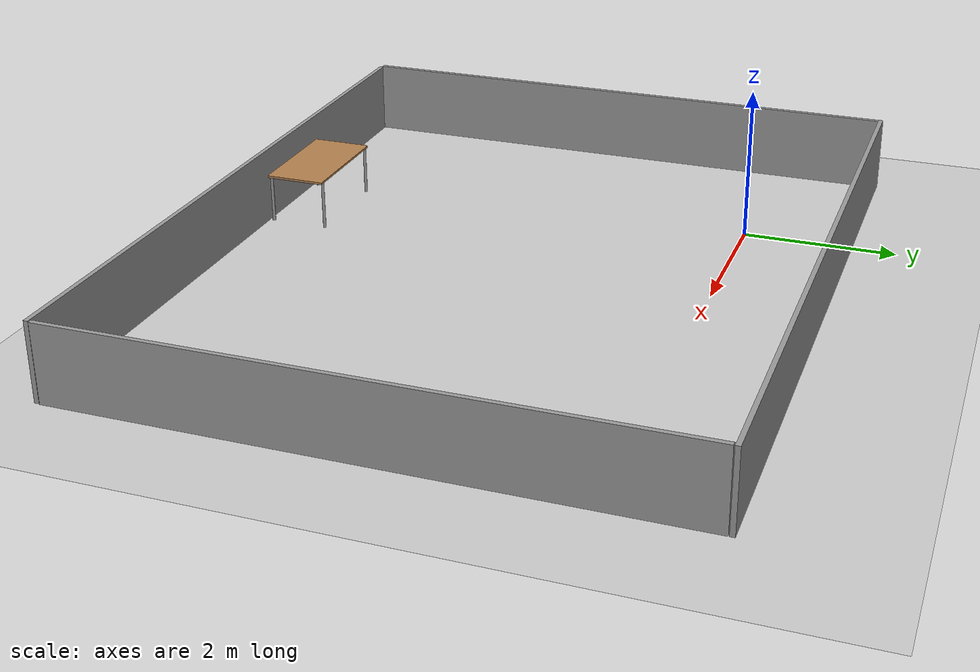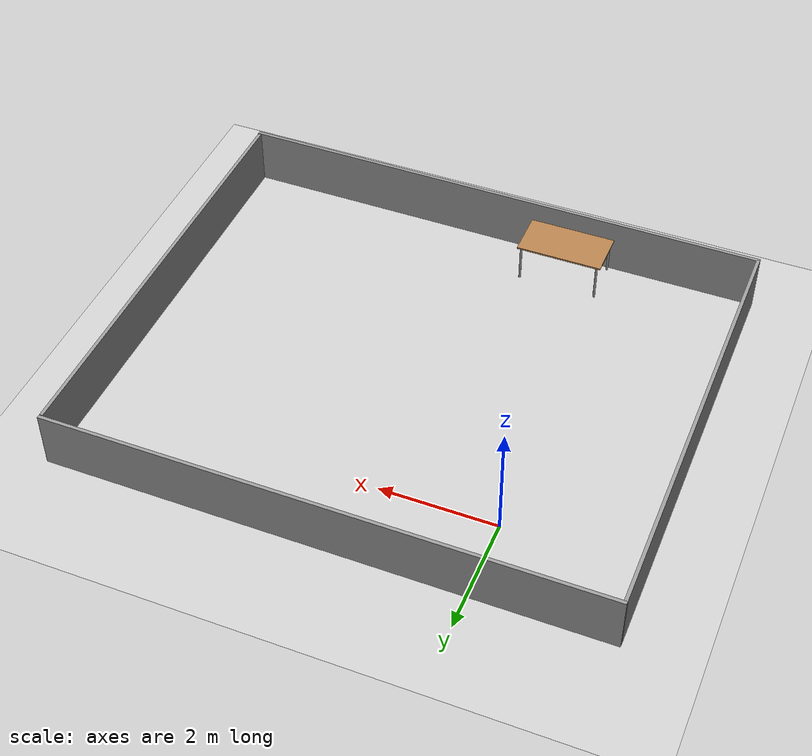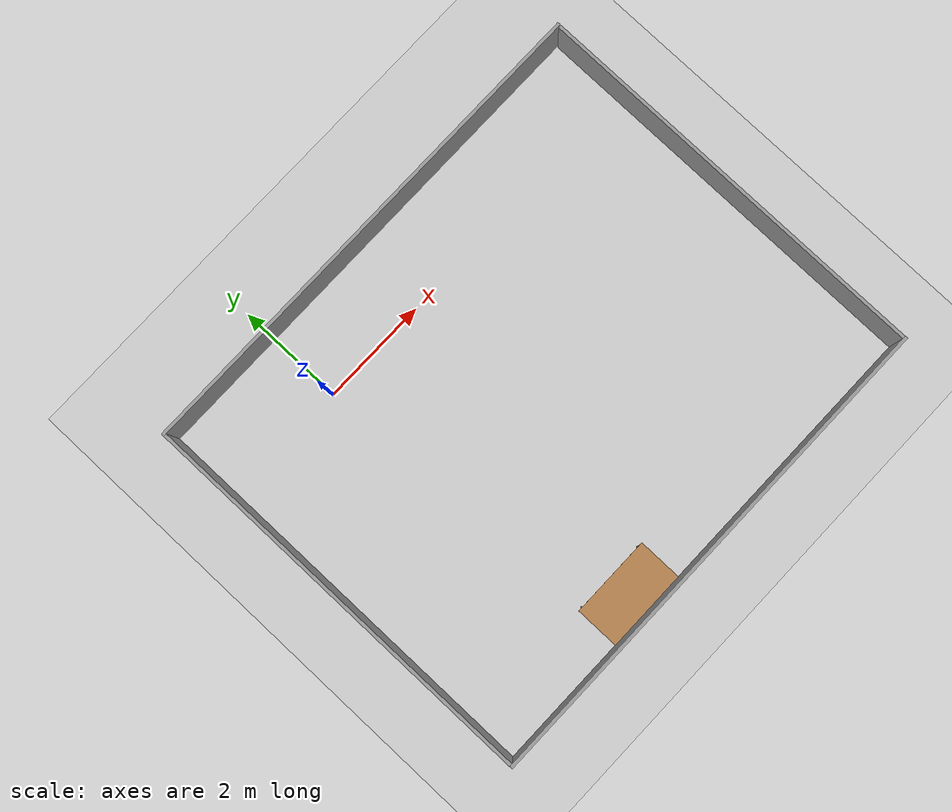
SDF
<sdf version="1.7">
 <world name="default">
  <model name="ground_plane">
   <static>1</static>
   <link name="link">
    <collision name="collision">
     <geometry><plane><normal>0 0 1</normal><size>100 100</size></plane></geometry>
     <surface>
      <contact><collide_bitmask>65535</collide_bitmask></contact>
      <friction><ode><mu>100</mu><mu2>50</mu2></ode></friction>
     </surface>
    </collision>
    <visual name="visual">
     <cast_shadows>0</cast_shadows>
     <geometry><plane><normal>0 0 1</normal><size>100 100</size></plane></geometry>
     <material>
      <script><uri>file://media/materials/scripts/gazebo.material</uri><name>Gazebo/Grey</name></script>
     </material>
    </visual>
   </link>
  </model>
  <gravity>0 0 -9.8</gravity>
  <magnetic_field>6e-06 2.3e-05 -4.2e-05</magnetic_field>
  <atmosphere type="adiabatic"/>
  <physics type="ode">
   <max_step_size>0.001</max_step_size>
   <real_time_factor>1</real_time_factor>
   <real_time_update_rate>1000</real_time_update_rate>
  </physics>
  <scene><ambient>0.4 0.4 0.4 1</ambient><background>0.7 0.7 0.7 1</background><shadows>1</shadows></scene>
  <spherical_coordinates>
   <surface_model>EARTH_WGS84</surface_model>
   <latitude_deg>0</latitude_deg>
   <longitude_deg>0</longitude_deg>
   <elevation>0</elevation>
   <heading_deg>0</heading_deg>
  </spherical_coordinates>
  <model name="table">
   <static>1</static>
   <link name="link">
    <collision name="surface">
     <pose>0 0 1 0 -0 0</pose>
     <geometry><box><size>1.5 0.8 0.03</size></box></geometry>
     <surface><friction><ode><mu>0.6</mu><mu2>0.6</mu2></ode></friction></surface>
    </collision>
    <visual name="visual1">
     <pose>0 0 1 0 -0 0</pose>
     <geometry><box><size>1.5 0.8 0.03</size></box></geometry>
     <material>
      <script><uri>file://media/materials/scripts/gazebo.material</uri><name>Gazebo/Wood</name></script>
     </material>
    </visual>
    <collision name="front_left_leg">
     <pose>0.68 0.38 0.5 0 -0 0</pose>
     <geometry><cylinder><radius>0.02</radius><length>1</length></cylinder></geometry>
    </collision>
    <visual name="front_left_leg">
     <pose>0.68 0.38 0.5 0 -0 0</pose>
     <geometry><cylinder><radius>0.02</radius><length>1</length></cylinder></geometry>
     <material>
      <script><uri>file://media/materials/scripts/gazebo.material</uri><name>Gazebo/Grey</name></script>
     </material>
    </visual>
    <collision name="front_right_leg">
     <pose>0.68 -0.38 0.5 0 -0 0</pose>
     <geometry><cylinder><radius>0.02</radius><length>1</length></cylinder></geometry>
    </collision>
    <visual name="front_right_leg">
     <pose>0.68 -0.38 0.5 0 -0 0</pose>
     <geometry><cylinder><radius>0.02</radius><length>1</length></cylinder></geometry>
     <material>
      <script><uri>file://media/materials/scripts/gazebo.material</uri><name>Gazebo/Grey</name></script>
     </material>
    </visual>
    <collision name="back_right_leg">
     <pose>-0.68 -0.38 0.5 0 -0 0</pose>
     <geometry><cylinder><radius>0.02</radius><length>1</length></cylinder></geometry>
    </collision>
    <visual name="back_right_leg">
     <pose>-0.68 -0.38 0.5 0 -0 0</pose>
     <geometry><cylinder><radius>0.02</radius><length>1</length></cylinder></geometry>
     <material>
      <script><uri>file://media/materials/scripts/gazebo.material</uri><name>Gazebo/Grey</name></script>
     </material>
    </visual>
    <collision name="back_left_leg">
     <pose>-0.68 0.38 0.5 0 -0 0</pose>
     <geometry><cylinder><radius>0.02</radius><length>1</length></cylinder></geometry>
    </collision>
    <visual name="back_left_leg">
     <pose>-0.68 0.38 0.5 0 -0 0</pose>
     <geometry><cylinder><radius>0.02</radius><length>1</length></cylinder></geometry>
     <material>
      <script><uri>file://media/materials/scripts/gazebo.material</uri><name>Gazebo/Grey</name></script>
     </material>
    </visual>
   </link>
   <pose>0.927582 -5.81675 -0.351693 0 -0 0</pose>
  </model>
  <model name="unit_box">
   <pose>2.3457 -6.28999 0.487827 0.003976 -0.002626 -0.000449</pose>
   <link name="link">
    <inertial>
     <mass>1</mass>
     <inertia>
      <ixx>0.166667</ixx>
      <ixy>0</ixy>
      <ixz>0</ixz>
      <iyy>0.166667</iyy>
      <iyz>0</iyz>
      <izz>0.166667</izz>
     </inertia>
    </inertial>
    <collision name="collision"><geometry><box><size>9.36245 0.0590552 1</size></box></geometry></collision>
    <visual name="visual">
     <geometry><box><size>9.36245 0.0590552 1</size></box></geometry>
     <material>
      <script><name>Gazebo/Grey</name><uri>file://media/materials/scripts/gazebo.material</uri></script>
     </material>
    </visual>
   </link>
  </model>
  <model name="unit_box_clone_clone">
   <pose>-2.31084 -2.44399 0.499588 0.001218 0.000117 1.57081</pose>
   <link name="link">
    <inertial>
     <mass>1</mass>
     <inertia>
      <ixx>0.166667</ixx>
      <ixy>0</ixy>
      <ixz>0</ixz>
      <iyy>0.166667</iyy>
      <iyz>0</iyz>
      <izz>0.166667</izz>
     </inertia>
    </inertial>
    <collision name="collision"><geometry><box><size>7.6231 0.059054 1</size></box></geometry></collision>
    <visual name="visual">
     <geometry><box><size>7.6231 0.059054 1</size></box></geometry>
     <material>
      <script><name>Gazebo/Grey</name><uri>file://media/materials/scripts/gazebo.material</uri></script>
     </material>
    </visual>
   </link>
  </model>
  <model name="unit_box_clone_clone_clone">
   <pose>6.99329 -2.45683 0.493524 0.001575 -0.001712 1.57063</pose>
   <link name="link">
    <inertial>
     <mass>1</mass>
     <inertia>
      <ixx>0.166667</ixx>
      <ixy>0</ixy>
      <ixz>0</ixz>
      <iyy>0.166667</iyy>
      <iyz>0</iyz>
      <izz>0.166667</izz>
     </inertia>
    </inertial>
    <collision name="collision"><geometry><box><size>7.6231 0.059054 1</size></box></geometry></collision>
    <visual name="visual">
     <geometry><box><size>7.6231 0.059054 1</size></box></geometry>
     <material>
      <script><name>Gazebo/Grey</name><uri>file://media/materials/scripts/gazebo.material</uri></script>
     </material>
    </visual>
   </link>
  </model>
  <light name="sun" type="directional">
   <pose>4.42187 -3.92813 10 0 -0 0</pose>
   <diffuse>0.8 0.8 0.8 1</diffuse>
   <specular>0.2 0.2 0.2 1</specular>
   <attenuation>
    <range>1000</range>
    <constant>0.9</constant>
    <linear>0.01</linear>
    <quadratic>0.001</quadratic>
   </attenuation>
   <direction>-0.5 0.1 -0.9</direction>
   <spot><inner_angle>0</inner_angle><outer_angle>0</outer_angle><falloff>0</falloff></spot>
  </light>
  <model name="unit_box_clone">
   <pose>2.34271 1.39501 0.5 0 -0 0</pose>
   <link name="link">
    <inertial>
     <mass>1</mass>
     <inertia>
      <ixx>0.166667</ixx>
      <ixy>0</ixy>
      <ixz>0</ixz>
      <iyy>0.166667</iyy>
      <iyz>0</iyz>
      <izz>0.166667</izz>
     </inertia>
    </inertial>
    <collision name="collision"><geometry><box><size>9.36245 0.059055 1</size></box></geometry></collision>
    <visual name="visual">
     <geometry><box><size>9.36245 0.059055 1</size></box></geometry>
     <material>
      <script><name>Gazebo/Grey</name><uri>file://media/materials/scripts/gazebo.material</uri></script>
     </material>
    </visual>
   </link>
  </model>
 </world>
</sdf>
